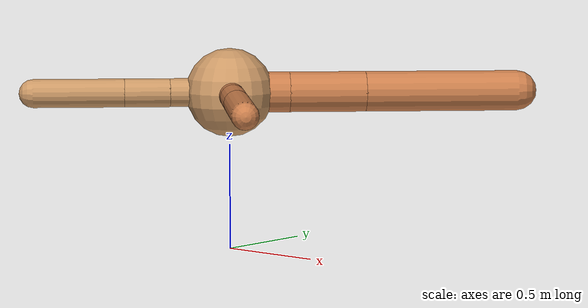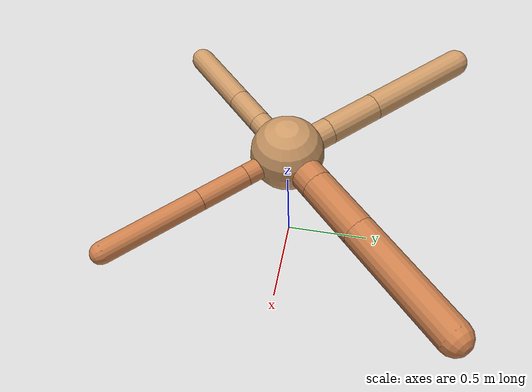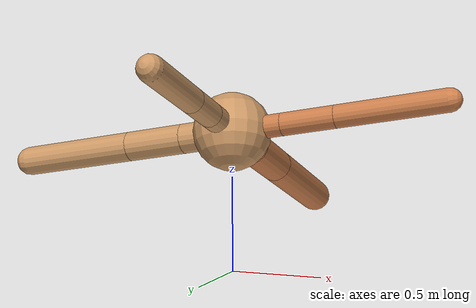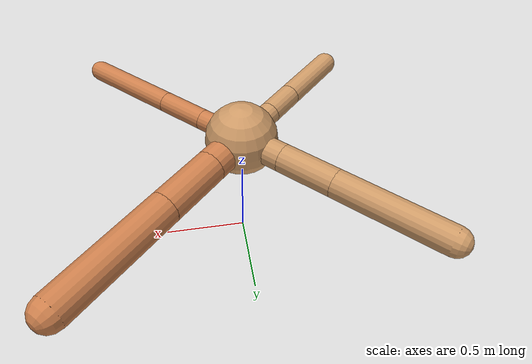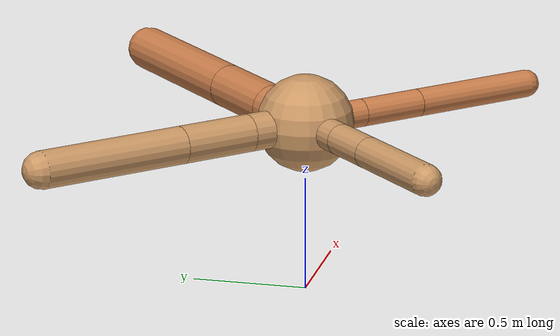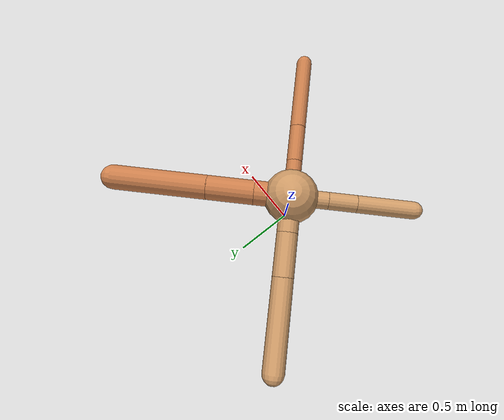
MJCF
<?xml version="1.0" ?>
<mujoco model="ant">

	<compiler angle="degree" coordinate="local" inertiafromgeom="true"/>

	<option integrator="RK4" timestep="0.01"/>

	<custom>

		<numeric data="0.0 0.0 0.55 1.0 0.0 0.0 0.0 0.0 1.0 0.0 -1.0 0.0 -1.0 0.0 1.0" name="init_qpos"/>

	</custom>

	<default>

		<joint armature="1" damping="1" limited="true"/>

		<geom conaffinity="0" condim="3" density="5.0" friction="1.5 0.1 0.1" margin="0.01" rgba="0.8 0.6 0.4 1"/>

	</default>

	<worldbody>

		<body name="torso" pos="0 0 0.75">

			<geom name="torso_geom" pos="0 0 0" size="0.20978814637256668" type="sphere"/>

			<!--joint armature="0" damping="0" limited="false" margin="0.01" name="root" pos="0 0 0" type="free"/-->

			<body name="front_left_leg" pos="0 0 0">

				<geom fromto="0 0 0 0.2 0.2 0" name="aux_1_geom" size="0.09569662514879547" type="capsule" rgba=".8 .5 .3 1"/>

				<body name="aux_1" pos="0.2 0.2 0">

					<joint axis="0 0 1" name="hip_1" pos="0.0 0.0 0.0" range="-40 40" type="hinge"/>

					<geom fromto="0 0 0 0.2571006322283367 0.2571006322283367 0" name="left_leg_geom" size="0.09569662514879547" type="capsule" rgba=".8 .5 .3 1"/>

					<body pos="0.2571006322283367 0.2571006322283367 0" name="front_left_foot">

						<joint axis="-1 1 0" name="ankle_1" pos="0.0 0.0 0.0" range="30 100" type="hinge"/>

						<geom fromto="0 0 0 0.5142012644566734 0.5142012644566734 0" name="left_ankle_geom" size="0.09569662514879547" type="capsule" rgba=".8 .5 .3 1"/>

					</body>

				</body>

			</body>

			<body name="front_right_leg" pos="0 0 0">

				<geom fromto="0 0 0 -0.2 0.2 0" name="aux_2_geom" size="0.08089334043256098" type="capsule"/>

				<body name="aux_2" pos="-0.2 0.2 0">

					<joint axis="0 0 1" name="hip_2" pos="0.0 0.0 0.0" range="-40 40" type="hinge"/>

					<geom fromto="0 0 0 -0.23163097376270791 0.23163097376270791 0" name="right_leg_geom" size="0.08089334043256098" type="capsule"/>

					<body pos="-0.23163097376270791 0.23163097376270791 0" name="front_right_foot">

						<joint axis="1 1 0" name="ankle_2" pos="0.0 0.0 0.0" range="-100 -30" type="hinge"/>

						<geom fromto="0 0 0 -0.46326194752541583 0.46326194752541583 0" name="right_ankle_geom" size="0.08089334043256098" type="capsule"/>

					</body>

				</body>

			</body>

			<body name="left_back_leg" pos="0 0 0">

				<geom fromto="0 0 0 -0.2 -0.2 0" name="aux_3_geom" size="0.06750299751600537" type="capsule"/>

				<body name="aux_3" pos="-0.2 -0.2 0">

					<joint axis="0 0 1" name="hip_3" pos="0.0 0.0 0.0" range="-40 40" type="hinge"/>

					<geom fromto="0 0 0 -0.15195642729247527 -0.15195642729247527 0" name="back_leg_geom" size="0.06750299751600537" type="capsule"/>

					<body pos="-0.15195642729247527 -0.15195642729247527 0" name="left_back_foot">

						<joint axis="-1 1 0" name="ankle_3" pos="0.0 0.0 0.0" range="-100 -30" type="hinge"/>

						<geom fromto="0 0 0 -0.30391285458495054 -0.30391285458495054 0" name="third_ankle_geom" size="0.06750299751600537" type="capsule"/>

					</body>

				</body>

			</body>

			<body name="right_back_leg" pos="0 0 0">

				<geom fromto="0 0 0 0.2 -0.2 0" name="aux_4_geom" size="0.06086717728384116" type="capsule" rgba=".8 .5 .3 1"/>

				<body name="aux_4" pos="0.2 -0.2 0">

					<joint axis="0 0 1" name="hip_4" pos="0.0 0.0 0.0" range="-40 40" type="hinge"/>

					<geom fromto="0 0 0 0.20327095161944883 -0.20327095161944883 0" name="rightback_leg_geom" size="0.06086717728384116" type="capsule" rgba=".8 .5 .3 1"/>

					<body pos="0.20327095161944883 -0.20327095161944883 0" name="right_back_foot">

						<joint axis="1 1 0" name="ankle_4" pos="0.0 0.0 0.0" range="30 100" type="hinge"/>

						<geom fromto="0 0 0 0.40654190323889766 -0.40654190323889766 0" name="fourth_ankle_geom" size="0.06086717728384116" type="capsule" rgba=".8 .5 .3 1"/>

					</body>

				</body>

			</body>

		</body>

	</worldbody>

	<actuator>

		<motor ctrllimited="true" ctrlrange="-1.0 1.0" joint="hip_4" gear="150"/>

		<motor ctrllimited="true" ctrlrange="-1.0 1.0" joint="ankle_4" gear="150"/>

		<motor ctrllimited="true" ctrlrange="-1.0 1.0" joint="hip_1" gear="150"/>

		<motor ctrllimited="true" ctrlrange="-1.0 1.0" joint="ankle_1" gear="150"/>

		<motor ctrllimited="true" ctrlrange="-1.0 1.0" joint="hip_2" gear="150"/>

		<motor ctrllimited="true" ctrlrange="-1.0 1.0" joint="ankle_2" gear="150"/>

		<motor ctrllimited="true" ctrlrange="-1.0 1.0" joint="hip_3" gear="150"/>

		<motor ctrllimited="true" ctrlrange="-1.0 1.0" joint="ankle_3" gear="150"/>

	</actuator>

</mujoco>
